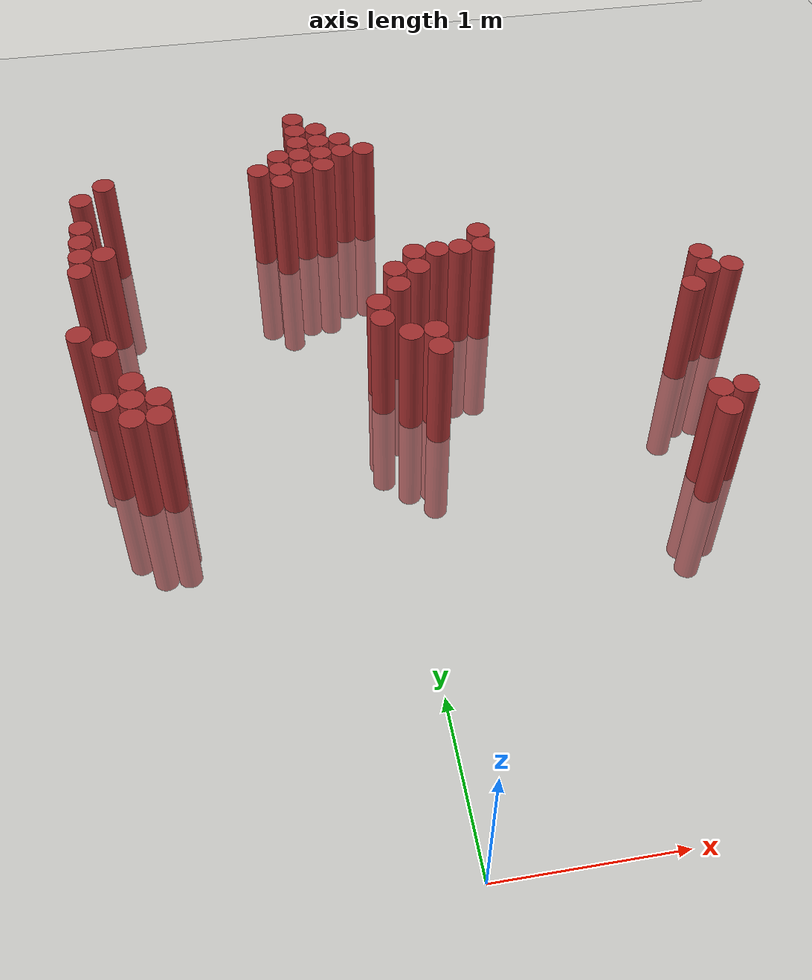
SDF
<sdf version="1.6">
 <world name="default">
  <model name="ground_plane">
   <static>1</static>
   <link name="link">
    <collision name="collision">
     <geometry><plane><normal>0 0 1</normal><size>100 100</size></plane></geometry>
     <surface><friction><ode><mu>100</mu><mu2>50</mu2></ode></friction></surface>
    </collision>
    <visual name="visual">
     <cast_shadows>0</cast_shadows>
     <geometry><plane><normal>0 0 1</normal><size>100 100</size></plane></geometry>
     <material>
      <script><uri>file://media/materials/scripts/gazebo.material</uri><name>Gazebo/Grey</name></script>
     </material>
    </visual>
   </link>
  </model>
  <model name="unit_cylinder_317">
   <static>1</static>
   <pose>-1.775000 3.325000 0.000000 0.000000 0.000000 0.000000</pose>
   <link name="link">
    <inertial>
     <mass>1</mass>
     <inertia><ixx>0.145833</ixx><ixy>0</ixy><ixz>0</ixz><iyy>0.145833</iyy><iyz>0</iyz><izz>0.125</izz></inertia>
    </inertial>
    <collision name="collision">
     <geometry><cylinder><radius>0.075000</radius><length>1.5</length></cylinder></geometry>
    </collision>
    <visual name="visual">
     <geometry><cylinder><radius>0.075000</radius><length>1.5</length></cylinder></geometry>
     <material>
      <ambient>0.648000 0.192000 0.192000 1</ambient>
      <diffuse>0.648000 0.192000 0.192000 1</diffuse>
     </material>
     <material>
      <script><name>Gazebo/Grey</name><uri>file://media/materials/scripts/gazebo.material</uri></script>
     </material>
    </visual>
   </link>
  </model>
  <model name="unit_cylinder_318">
   <static>1</static>
   <pose>-1.775000 3.925000 0.000000 0.000000 0.000000 0.000000</pose>
   <link name="link">
    <inertial>
     <mass>1</mass>
     <inertia><ixx>0.145833</ixx><ixy>0</ixy><ixz>0</ixz><iyy>0.145833</iyy><iyz>0</iyz><izz>0.125</izz></inertia>
    </inertial>
    <collision name="collision">
     <geometry><cylinder><radius>0.075000</radius><length>1.5</length></cylinder></geometry>
    </collision>
    <visual name="visual">
     <geometry><cylinder><radius>0.075000</radius><length>1.5</length></cylinder></geometry>
     <material>
      <ambient>0.648000 0.192000 0.192000 1</ambient>
      <diffuse>0.648000 0.192000 0.192000 1</diffuse>
     </material>
     <material>
      <script><name>Gazebo/Grey</name><uri>file://media/materials/scripts/gazebo.material</uri></script>
     </material>
    </visual>
   </link>
  </model>
  <model name="unit_cylinder_319">
   <static>1</static>
   <pose>-1.775000 4.075000 0.000000 0.000000 0.000000 0.000000</pose>
   <link name="link">
    <inertial>
     <mass>1</mass>
     <inertia><ixx>0.145833</ixx><ixy>0</ixy><ixz>0</ixz><iyy>0.145833</iyy><iyz>0</iyz><izz>0.125</izz></inertia>
    </inertial>
    <collision name="collision">
     <geometry><cylinder><radius>0.075000</radius><length>1.5</length></cylinder></geometry>
    </collision>
    <visual name="visual">
     <geometry><cylinder><radius>0.075000</radius><length>1.5</length></cylinder></geometry>
     <material>
      <ambient>0.648000 0.192000 0.192000 1</ambient>
      <diffuse>0.648000 0.192000 0.192000 1</diffuse>
     </material>
     <material>
      <script><name>Gazebo/Grey</name><uri>file://media/materials/scripts/gazebo.material</uri></script>
     </material>
    </visual>
   </link>
  </model>
  <model name="unit_cylinder_320">
   <static>1</static>
   <pose>-1.775000 4.225000 0.000000 0.000000 0.000000 0.000000</pose>
   <link name="link">
    <inertial>
     <mass>1</mass>
     <inertia><ixx>0.145833</ixx><ixy>0</ixy><ixz>0</ixz><iyy>0.145833</iyy><iyz>0</iyz><izz>0.125</izz></inertia>
    </inertial>
    <collision name="collision">
     <geometry><cylinder><radius>0.075000</radius><length>1.5</length></cylinder></geometry>
    </collision>
    <visual name="visual">
     <geometry><cylinder><radius>0.075000</radius><length>1.5</length></cylinder></geometry>
     <material>
      <ambient>0.648000 0.192000 0.192000 1</ambient>
      <diffuse>0.648000 0.192000 0.192000 1</diffuse>
     </material>
     <material>
      <script><name>Gazebo/Grey</name><uri>file://media/materials/scripts/gazebo.material</uri></script>
     </material>
    </visual>
   </link>
  </model>
  <model name="unit_cylinder_321">
   <static>1</static>
   <pose>-1.775000 4.375000 0.000000 0.000000 0.000000 0.000000</pose>
   <link name="link">
    <inertial>
     <mass>1</mass>
     <inertia><ixx>0.145833</ixx><ixy>0</ixy><ixz>0</ixz><iyy>0.145833</iyy><iyz>0</iyz><izz>0.125</izz></inertia>
    </inertial>
    <collision name="collision">
     <geometry><cylinder><radius>0.075000</radius><length>1.5</length></cylinder></geometry>
    </collision>
    <visual name="visual">
     <geometry><cylinder><radius>0.075000</radius><length>1.5</length></cylinder></geometry>
     <material>
      <ambient>0.648000 0.192000 0.192000 1</ambient>
      <diffuse>0.648000 0.192000 0.192000 1</diffuse>
     </material>
     <material>
      <script><name>Gazebo/Grey</name><uri>file://media/materials/scripts/gazebo.material</uri></script>
     </material>
    </visual>
   </link>
  </model>
  <model name="unit_cylinder_322">
   <static>1</static>
   <pose>-1.775000 4.675000 0.000000 0.000000 0.000000 0.000000</pose>
   <link name="link">
    <inertial>
     <mass>1</mass>
     <inertia><ixx>0.145833</ixx><ixy>0</ixy><ixz>0</ixz><iyy>0.145833</iyy><iyz>0</iyz><izz>0.125</izz></inertia>
    </inertial>
    <collision name="collision">
     <geometry><cylinder><radius>0.075000</radius><length>1.5</length></cylinder></geometry>
    </collision>
    <visual name="visual">
     <geometry><cylinder><radius>0.075000</radius><length>1.5</length></cylinder></geometry>
     <material>
      <ambient>0.648000 0.192000 0.192000 1</ambient>
      <diffuse>0.648000 0.192000 0.192000 1</diffuse>
     </material>
     <material>
      <script><name>Gazebo/Grey</name><uri>file://media/materials/scripts/gazebo.material</uri></script>
     </material>
    </visual>
   </link>
  </model>
  <model name="unit_cylinder_325">
   <static>1</static>
   <pose>-1.625000 2.725000 0.000000 0.000000 0.000000 0.000000</pose>
   <link name="link">
    <inertial>
     <mass>1</mass>
     <inertia><ixx>0.145833</ixx><ixy>0</ixy><ixz>0</ixz><iyy>0.145833</iyy><iyz>0</iyz><izz>0.125</izz></inertia>
    </inertial>
    <collision name="collision">
     <geometry><cylinder><radius>0.075000</radius><length>1.5</length></cylinder></geometry>
    </collision>
    <visual name="visual">
     <geometry><cylinder><radius>0.075000</radius><length>1.5</length></cylinder></geometry>
     <material>
      <ambient>0.648000 0.192000 0.192000 1</ambient>
      <diffuse>0.648000 0.192000 0.192000 1</diffuse>
     </material>
     <material>
      <script><name>Gazebo/Grey</name><uri>file://media/materials/scripts/gazebo.material</uri></script>
     </material>
    </visual>
   </link>
  </model>
  <model name="unit_cylinder_326">
   <static>1</static>
   <pose>-1.625000 3.175000 0.000000 0.000000 0.000000 0.000000</pose>
   <link name="link">
    <inertial>
     <mass>1</mass>
     <inertia><ixx>0.145833</ixx><ixy>0</ixy><ixz>0</ixz><iyy>0.145833</iyy><iyz>0</iyz><izz>0.125</izz></inertia>
    </inertial>
    <collision name="collision">
     <geometry><cylinder><radius>0.075000</radius><length>1.5</length></cylinder></geometry>
    </collision>
    <visual name="visual">
     <geometry><cylinder><radius>0.075000</radius><length>1.5</length></cylinder></geometry>
     <material>
      <ambient>0.648000 0.192000 0.192000 1</ambient>
      <diffuse>0.648000 0.192000 0.192000 1</diffuse>
     </material>
     <material>
      <script><name>Gazebo/Grey</name><uri>file://media/materials/scripts/gazebo.material</uri></script>
     </material>
    </visual>
   </link>
  </model>
  <model name="unit_cylinder_327">
   <static>1</static>
   <pose>-1.625000 4.075000 0.000000 0.000000 0.000000 0.000000</pose>
   <link name="link">
    <inertial>
     <mass>1</mass>
     <inertia><ixx>0.145833</ixx><ixy>0</ixy><ixz>0</ixz><iyy>0.145833</iyy><iyz>0</iyz><izz>0.125</izz></inertia>
    </inertial>
    <collision name="collision">
     <geometry><cylinder><radius>0.075000</radius><length>1.5</length></cylinder></geometry>
    </collision>
    <visual name="visual">
     <geometry><cylinder><radius>0.075000</radius><length>1.5</length></cylinder></geometry>
     <material>
      <ambient>0.648000 0.192000 0.192000 1</ambient>
      <diffuse>0.648000 0.192000 0.192000 1</diffuse>
     </material>
     <material>
      <script><name>Gazebo/Grey</name><uri>file://media/materials/scripts/gazebo.material</uri></script>
     </material>
    </visual>
   </link>
  </model>
  <model name="unit_cylinder_328">
   <static>1</static>
   <pose>-1.625000 4.825000 0.000000 0.000000 0.000000 0.000000</pose>
   <link name="link">
    <inertial>
     <mass>1</mass>
     <inertia><ixx>0.145833</ixx><ixy>0</ixy><ixz>0</ixz><iyy>0.145833</iyy><iyz>0</iyz><izz>0.125</izz></inertia>
    </inertial>
    <collision name="collision">
     <geometry><cylinder><radius>0.075000</radius><length>1.5</length></cylinder></geometry>
    </collision>
    <visual name="visual">
     <geometry><cylinder><radius>0.075000</radius><length>1.5</length></cylinder></geometry>
     <material>
      <ambient>0.648000 0.192000 0.192000 1</ambient>
      <diffuse>0.648000 0.192000 0.192000 1</diffuse>
     </material>
     <material>
      <script><name>Gazebo/Grey</name><uri>file://media/materials/scripts/gazebo.material</uri></script>
     </material>
    </visual>
   </link>
  </model>
  <model name="unit_cylinder_331">
   <static>1</static>
   <pose>-1.475000 2.575000 0.000000 0.000000 0.000000 0.000000</pose>
   <link name="link">
    <inertial>
     <mass>1</mass>
     <inertia><ixx>0.145833</ixx><ixy>0</ixy><ixz>0</ixz><iyy>0.145833</iyy><iyz>0</iyz><izz>0.125</izz></inertia>
    </inertial>
    <collision name="collision">
     <geometry><cylinder><radius>0.075000</radius><length>1.5</length></cylinder></geometry>
    </collision>
    <visual name="visual">
     <geometry><cylinder><radius>0.075000</radius><length>1.5</length></cylinder></geometry>
     <material>
      <ambient>0.648000 0.192000 0.192000 1</ambient>
      <diffuse>0.648000 0.192000 0.192000 1</diffuse>
     </material>
     <material>
      <script><name>Gazebo/Grey</name><uri>file://media/materials/scripts/gazebo.material</uri></script>
     </material>
    </visual>
   </link>
  </model>
  <model name="unit_cylinder_332">
   <static>1</static>
   <pose>-1.475000 2.725000 0.000000 0.000000 0.000000 0.000000</pose>
   <link name="link">
    <inertial>
     <mass>1</mass>
     <inertia><ixx>0.145833</ixx><ixy>0</ixy><ixz>0</ixz><iyy>0.145833</iyy><iyz>0</iyz><izz>0.125</izz></inertia>
    </inertial>
    <collision name="collision">
     <geometry><cylinder><radius>0.075000</radius><length>1.5</length></cylinder></geometry>
    </collision>
    <visual name="visual">
     <geometry><cylinder><radius>0.075000</radius><length>1.5</length></cylinder></geometry>
     <material>
      <ambient>0.648000 0.192000 0.192000 1</ambient>
      <diffuse>0.648000 0.192000 0.192000 1</diffuse>
     </material>
     <material>
      <script><name>Gazebo/Grey</name><uri>file://media/materials/scripts/gazebo.material</uri></script>
     </material>
    </visual>
   </link>
  </model>
  <model name="unit_cylinder_333">
   <static>1</static>
   <pose>-1.475000 2.875000 0.000000 0.000000 0.000000 0.000000</pose>
   <link name="link">
    <inertial>
     <mass>1</mass>
     <inertia><ixx>0.145833</ixx><ixy>0</ixy><ixz>0</ixz><iyy>0.145833</iyy><iyz>0</iyz><izz>0.125</izz></inertia>
    </inertial>
    <collision name="collision">
     <geometry><cylinder><radius>0.075000</radius><length>1.5</length></cylinder></geometry>
    </collision>
    <visual name="visual">
     <geometry><cylinder><radius>0.075000</radius><length>1.5</length></cylinder></geometry>
     <material>
      <ambient>0.648000 0.192000 0.192000 1</ambient>
      <diffuse>0.648000 0.192000 0.192000 1</diffuse>
     </material>
     <material>
      <script><name>Gazebo/Grey</name><uri>file://media/materials/scripts/gazebo.material</uri></script>
     </material>
    </visual>
   </link>
  </model>
  <model name="unit_cylinder_334">
   <static>1</static>
   <pose>-1.325000 2.575000 0.000000 0.000000 0.000000 0.000000</pose>
   <link name="link">
    <inertial>
     <mass>1</mass>
     <inertia><ixx>0.145833</ixx><ixy>0</ixy><ixz>0</ixz><iyy>0.145833</iyy><iyz>0</iyz><izz>0.125</izz></inertia>
    </inertial>
    <collision name="collision">
     <geometry><cylinder><radius>0.075000</radius><length>1.5</length></cylinder></geometry>
    </collision>
    <visual name="visual">
     <geometry><cylinder><radius>0.075000</radius><length>1.5</length></cylinder></geometry>
     <material>
      <ambient>0.648000 0.192000 0.192000 1</ambient>
      <diffuse>0.648000 0.192000 0.192000 1</diffuse>
     </material>
     <material>
      <script><name>Gazebo/Grey</name><uri>file://media/materials/scripts/gazebo.material</uri></script>
     </material>
    </visual>
   </link>
  </model>
  <model name="unit_cylinder_335">
   <static>1</static>
   <pose>-1.325000 2.725000 0.000000 0.000000 0.000000 0.000000</pose>
   <link name="link">
    <inertial>
     <mass>1</mass>
     <inertia><ixx>0.145833</ixx><ixy>0</ixy><ixz>0</ixz><iyy>0.145833</iyy><iyz>0</iyz><izz>0.125</izz></inertia>
    </inertial>
    <collision name="collision">
     <geometry><cylinder><radius>0.075000</radius><length>1.5</length></cylinder></geometry>
    </collision>
    <visual name="visual">
     <geometry><cylinder><radius>0.075000</radius><length>1.5</length></cylinder></geometry>
     <material>
      <ambient>0.648000 0.192000 0.192000 1</ambient>
      <diffuse>0.648000 0.192000 0.192000 1</diffuse>
     </material>
     <material>
      <script><name>Gazebo/Grey</name><uri>file://media/materials/scripts/gazebo.material</uri></script>
     </material>
    </visual>
   </link>
  </model>
  <model name="unit_cylinder_347">
   <static>1</static>
   <pose>-0.575000 4.825000 0.000000 0.000000 0.000000 0.000000</pose>
   <link name="link">
    <inertial>
     <mass>1</mass>
     <inertia><ixx>0.145833</ixx><ixy>0</ixy><ixz>0</ixz><iyy>0.145833</iyy><iyz>0</iyz><izz>0.125</izz></inertia>
    </inertial>
    <collision name="collision">
     <geometry><cylinder><radius>0.075000</radius><length>1.5</length></cylinder></geometry>
    </collision>
    <visual name="visual">
     <geometry><cylinder><radius>0.075000</radius><length>1.5</length></cylinder></geometry>
     <material>
      <ambient>0.648000 0.192000 0.192000 1</ambient>
      <diffuse>0.648000 0.192000 0.192000 1</diffuse>
     </material>
     <material>
      <script><name>Gazebo/Grey</name><uri>file://media/materials/scripts/gazebo.material</uri></script>
     </material>
    </visual>
   </link>
  </model>
  <model name="unit_cylinder_348">
   <static>1</static>
   <pose>-0.425000 4.675000 0.000000 0.000000 0.000000 0.000000</pose>
   <link name="link">
    <inertial>
     <mass>1</mass>
     <inertia><ixx>0.145833</ixx><ixy>0</ixy><ixz>0</ixz><iyy>0.145833</iyy><iyz>0</iyz><izz>0.125</izz></inertia>
    </inertial>
    <collision name="collision">
     <geometry><cylinder><radius>0.075000</radius><length>1.5</length></cylinder></geometry>
    </collision>
    <visual name="visual">
     <geometry><cylinder><radius>0.075000</radius><length>1.5</length></cylinder></geometry>
     <material>
      <ambient>0.648000 0.192000 0.192000 1</ambient>
      <diffuse>0.648000 0.192000 0.192000 1</diffuse>
     </material>
     <material>
      <script><name>Gazebo/Grey</name><uri>file://media/materials/scripts/gazebo.material</uri></script>
     </material>
    </visual>
   </link>
  </model>
  <model name="unit_cylinder_349">
   <static>1</static>
   <pose>-0.425000 4.825000 0.000000 0.000000 0.000000 0.000000</pose>
   <link name="link">
    <inertial>
     <mass>1</mass>
     <inertia><ixx>0.145833</ixx><ixy>0</ixy><ixz>0</ixz><iyy>0.145833</iyy><iyz>0</iyz><izz>0.125</izz></inertia>
    </inertial>
    <collision name="collision">
     <geometry><cylinder><radius>0.075000</radius><length>1.5</length></cylinder></geometry>
    </collision>
    <visual name="visual">
     <geometry><cylinder><radius>0.075000</radius><length>1.5</length></cylinder></geometry>
     <material>
      <ambient>0.648000 0.192000 0.192000 1</ambient>
      <diffuse>0.648000 0.192000 0.192000 1</diffuse>
     </material>
     <material>
      <script><name>Gazebo/Grey</name><uri>file://media/materials/scripts/gazebo.material</uri></script>
     </material>
    </visual>
   </link>
  </model>
  <model name="unit_cylinder_350">
   <static>1</static>
   <pose>-0.425000 4.975000 0.000000 0.000000 0.000000 0.000000</pose>
   <link name="link">
    <inertial>
     <mass>1</mass>
     <inertia><ixx>0.145833</ixx><ixy>0</ixy><ixz>0</ixz><iyy>0.145833</iyy><iyz>0</iyz><izz>0.125</izz></inertia>
    </inertial>
    <collision name="collision">
     <geometry><cylinder><radius>0.075000</radius><length>1.5</length></cylinder></geometry>
    </collision>
    <visual name="visual">
     <geometry><cylinder><radius>0.075000</radius><length>1.5</length></cylinder></geometry>
     <material>
      <ambient>0.648000 0.192000 0.192000 1</ambient>
      <diffuse>0.648000 0.192000 0.192000 1</diffuse>
     </material>
     <material>
      <script><name>Gazebo/Grey</name><uri>file://media/materials/scripts/gazebo.material</uri></script>
     </material>
    </visual>
   </link>
  </model>
  <model name="unit_cylinder_351">
   <static>1</static>
   <pose>-0.275000 4.825000 0.000000 0.000000 0.000000 0.000000</pose>
   <link name="link">
    <inertial>
     <mass>1</mass>
     <inertia><ixx>0.145833</ixx><ixy>0</ixy><ixz>0</ixz><iyy>0.145833</iyy><iyz>0</iyz><izz>0.125</izz></inertia>
    </inertial>
    <collision name="collision">
     <geometry><cylinder><radius>0.075000</radius><length>1.5</length></cylinder></geometry>
    </collision>
    <visual name="visual">
     <geometry><cylinder><radius>0.075000</radius><length>1.5</length></cylinder></geometry>
     <material>
      <ambient>0.648000 0.192000 0.192000 1</ambient>
      <diffuse>0.648000 0.192000 0.192000 1</diffuse>
     </material>
     <material>
      <script><name>Gazebo/Grey</name><uri>file://media/materials/scripts/gazebo.material</uri></script>
     </material>
    </visual>
   </link>
  </model>
  <model name="unit_cylinder_352">
   <static>1</static>
   <pose>-0.275000 4.975000 0.000000 0.000000 0.000000 0.000000</pose>
   <link name="link">
    <inertial>
     <mass>1</mass>
     <inertia><ixx>0.145833</ixx><ixy>0</ixy><ixz>0</ixz><iyy>0.145833</iyy><iyz>0</iyz><izz>0.125</izz></inertia>
    </inertial>
    <collision name="collision">
     <geometry><cylinder><radius>0.075000</radius><length>1.5</length></cylinder></geometry>
    </collision>
    <visual name="visual">
     <geometry><cylinder><radius>0.075000</radius><length>1.5</length></cylinder></geometry>
     <material>
      <ambient>0.648000 0.192000 0.192000 1</ambient>
      <diffuse>0.648000 0.192000 0.192000 1</diffuse>
     </material>
     <material>
      <script><name>Gazebo/Grey</name><uri>file://media/materials/scripts/gazebo.material</uri></script>
     </material>
    </visual>
   </link>
  </model>
  <model name="unit_cylinder_353">
   <static>1</static>
   <pose>-0.275000 5.125000 0.000000 0.000000 0.000000 0.000000</pose>
   <link name="link">
    <inertial>
     <mass>1</mass>
     <inertia><ixx>0.145833</ixx><ixy>0</ixy><ixz>0</ixz><iyy>0.145833</iyy><iyz>0</iyz><izz>0.125</izz></inertia>
    </inertial>
    <collision name="collision">
     <geometry><cylinder><radius>0.075000</radius><length>1.5</length></cylinder></geometry>
    </collision>
    <visual name="visual">
     <geometry><cylinder><radius>0.075000</radius><length>1.5</length></cylinder></geometry>
     <material>
      <ambient>0.648000 0.192000 0.192000 1</ambient>
      <diffuse>0.648000 0.192000 0.192000 1</diffuse>
     </material>
     <material>
      <script><name>Gazebo/Grey</name><uri>file://media/materials/scripts/gazebo.material</uri></script>
     </material>
    </visual>
   </link>
  </model>
  <model name="unit_cylinder_354">
   <static>1</static>
   <pose>-0.275000 5.275000 0.000000 0.000000 0.000000 0.000000</pose>
   <link name="link">
    <inertial>
     <mass>1</mass>
     <inertia><ixx>0.145833</ixx><ixy>0</ixy><ixz>0</ixz><iyy>0.145833</iyy><iyz>0</iyz><izz>0.125</izz></inertia>
    </inertial>
    <collision name="collision">
     <geometry><cylinder><radius>0.075000</radius><length>1.5</length></cylinder></geometry>
    </collision>
    <visual name="visual">
     <geometry><cylinder><radius>0.075000</radius><length>1.5</length></cylinder></geometry>
     <material>
      <ambient>0.648000 0.192000 0.192000 1</ambient>
      <diffuse>0.648000 0.192000 0.192000 1</diffuse>
     </material>
     <material>
      <script><name>Gazebo/Grey</name><uri>file://media/materials/scripts/gazebo.material</uri></script>
     </material>
    </visual>
   </link>
  </model>
  <model name="unit_cylinder_355">
   <static>1</static>
   <pose>-0.275000 5.425000 0.000000 0.000000 0.000000 0.000000</pose>
   <link name="link">
    <inertial>
     <mass>1</mass>
     <inertia><ixx>0.145833</ixx><ixy>0</ixy><ixz>0</ixz><iyy>0.145833</iyy><iyz>0</iyz><izz>0.125</izz></inertia>
    </inertial>
    <collision name="collision">
     <geometry><cylinder><radius>0.075000</radius><length>1.5</length></cylinder></geometry>
    </collision>
    <visual name="visual">
     <geometry><cylinder><radius>0.075000</radius><length>1.5</length></cylinder></geometry>
     <material>
      <ambient>0.648000 0.192000 0.192000 1</ambient>
      <diffuse>0.648000 0.192000 0.192000 1</diffuse>
     </material>
     <material>
      <script><name>Gazebo/Grey</name><uri>file://media/materials/scripts/gazebo.material</uri></script>
     </material>
    </visual>
   </link>
  </model>
  <model name="unit_cylinder_357">
   <static>1</static>
   <pose>-0.125000 4.825000 0.000000 0.000000 0.000000 0.000000</pose>
   <link name="link">
    <inertial>
     <mass>1</mass>
     <inertia><ixx>0.145833</ixx><ixy>0</ixy><ixz>0</ixz><iyy>0.145833</iyy><iyz>0</iyz><izz>0.125</izz></inertia>
    </inertial>
    <collision name="collision">
     <geometry><cylinder><radius>0.075000</radius><length>1.5</length></cylinder></geometry>
    </collision>
    <visual name="visual">
     <geometry><cylinder><radius>0.075000</radius><length>1.5</length></cylinder></geometry>
     <material>
      <ambient>0.648000 0.192000 0.192000 1</ambient>
      <diffuse>0.648000 0.192000 0.192000 1</diffuse>
     </material>
     <material>
      <script><name>Gazebo/Grey</name><uri>file://media/materials/scripts/gazebo.material</uri></script>
     </material>
    </visual>
   </link>
  </model>
  <model name="unit_cylinder_358">
   <static>1</static>
   <pose>-0.125000 4.975000 0.000000 0.000000 0.000000 0.000000</pose>
   <link name="link">
    <inertial>
     <mass>1</mass>
     <inertia><ixx>0.145833</ixx><ixy>0</ixy><ixz>0</ixz><iyy>0.145833</iyy><iyz>0</iyz><izz>0.125</izz></inertia>
    </inertial>
    <collision name="collision">
     <geometry><cylinder><radius>0.075000</radius><length>1.5</length></cylinder></geometry>
    </collision>
    <visual name="visual">
     <geometry><cylinder><radius>0.075000</radius><length>1.5</length></cylinder></geometry>
     <material>
      <ambient>0.648000 0.192000 0.192000 1</ambient>
      <diffuse>0.648000 0.192000 0.192000 1</diffuse>
     </material>
     <material>
      <script><name>Gazebo/Grey</name><uri>file://media/materials/scripts/gazebo.material</uri></script>
     </material>
    </visual>
   </link>
  </model>
  <model name="unit_cylinder_359">
   <static>1</static>
   <pose>-0.125000 5.125000 0.000000 0.000000 0.000000 0.000000</pose>
   <link name="link">
    <inertial>
     <mass>1</mass>
     <inertia><ixx>0.145833</ixx><ixy>0</ixy><ixz>0</ixz><iyy>0.145833</iyy><iyz>0</iyz><izz>0.125</izz></inertia>
    </inertial>
    <collision name="collision">
     <geometry><cylinder><radius>0.075000</radius><length>1.5</length></cylinder></geometry>
    </collision>
    <visual name="visual">
     <geometry><cylinder><radius>0.075000</radius><length>1.5</length></cylinder></geometry>
     <material>
      <ambient>0.648000 0.192000 0.192000 1</ambient>
      <diffuse>0.648000 0.192000 0.192000 1</diffuse>
     </material>
     <material>
      <script><name>Gazebo/Grey</name><uri>file://media/materials/scripts/gazebo.material</uri></script>
     </material>
    </visual>
   </link>
  </model>
  <model name="unit_cylinder_360">
   <static>1</static>
   <pose>-0.125000 5.275000 0.000000 0.000000 0.000000 0.000000</pose>
   <link name="link">
    <inertial>
     <mass>1</mass>
     <inertia><ixx>0.145833</ixx><ixy>0</ixy><ixz>0</ixz><iyy>0.145833</iyy><iyz>0</iyz><izz>0.125</izz></inertia>
    </inertial>
    <collision name="collision">
     <geometry><cylinder><radius>0.075000</radius><length>1.5</length></cylinder></geometry>
    </collision>
    <visual name="visual">
     <geometry><cylinder><radius>0.075000</radius><length>1.5</length></cylinder></geometry>
     <material>
      <ambient>0.648000 0.192000 0.192000 1</ambient>
      <diffuse>0.648000 0.192000 0.192000 1</diffuse>
     </material>
     <material>
      <script><name>Gazebo/Grey</name><uri>file://media/materials/scripts/gazebo.material</uri></script>
     </material>
    </visual>
   </link>
  </model>
  <model name="unit_cylinder_363">
   <static>1</static>
   <pose>0.025000 3.175000 0.000000 0.000000 0.000000 0.000000</pose>
   <link name="link">
    <inertial>
     <mass>1</mass>
     <inertia><ixx>0.145833</ixx><ixy>0</ixy><ixz>0</ixz><iyy>0.145833</iyy><iyz>0</iyz><izz>0.125</izz></inertia>
    </inertial>
    <collision name="collision">
     <geometry><cylinder><radius>0.075000</radius><length>1.5</length></cylinder></geometry>
    </collision>
    <visual name="visual">
     <geometry><cylinder><radius>0.075000</radius><length>1.5</length></cylinder></geometry>
     <material>
      <ambient>0.648000 0.192000 0.192000 1</ambient>
      <diffuse>0.648000 0.192000 0.192000 1</diffuse>
     </material>
     <material>
      <script><name>Gazebo/Grey</name><uri>file://media/materials/scripts/gazebo.material</uri></script>
     </material>
    </visual>
   </link>
  </model>
  <model name="unit_cylinder_364">
   <static>1</static>
   <pose>0.025000 3.325000 0.000000 0.000000 0.000000 0.000000</pose>
   <link name="link">
    <inertial>
     <mass>1</mass>
     <inertia><ixx>0.145833</ixx><ixy>0</ixy><ixz>0</ixz><iyy>0.145833</iyy><iyz>0</iyz><izz>0.125</izz></inertia>
    </inertial>
    <collision name="collision">
     <geometry><cylinder><radius>0.075000</radius><length>1.5</length></cylinder></geometry>
    </collision>
    <visual name="visual">
     <geometry><cylinder><radius>0.075000</radius><length>1.5</length></cylinder></geometry>
     <material>
      <ambient>0.648000 0.192000 0.192000 1</ambient>
      <diffuse>0.648000 0.192000 0.192000 1</diffuse>
     </material>
     <material>
      <script><name>Gazebo/Grey</name><uri>file://media/materials/scripts/gazebo.material</uri></script>
     </material>
    </visual>
   </link>
  </model>
  <model name="unit_cylinder_365">
   <static>1</static>
   <pose>0.025000 4.975000 0.000000 0.000000 0.000000 0.000000</pose>
   <link name="link">
    <inertial>
     <mass>1</mass>
     <inertia><ixx>0.145833</ixx><ixy>0</ixy><ixz>0</ixz><iyy>0.145833</iyy><iyz>0</iyz><izz>0.125</izz></inertia>
    </inertial>
    <collision name="collision">
     <geometry><cylinder><radius>0.075000</radius><length>1.5</length></cylinder></geometry>
    </collision>
    <visual name="visual">
     <geometry><cylinder><radius>0.075000</radius><length>1.5</length></cylinder></geometry>
     <material>
      <ambient>0.648000 0.192000 0.192000 1</ambient>
      <diffuse>0.648000 0.192000 0.192000 1</diffuse>
     </material>
     <material>
      <script><name>Gazebo/Grey</name><uri>file://media/materials/scripts/gazebo.material</uri></script>
     </material>
    </visual>
   </link>
  </model>
  <model name="unit_cylinder_366">
   <static>1</static>
   <pose>0.025000 5.125000 0.000000 0.000000 0.000000 0.000000</pose>
   <link name="link">
    <inertial>
     <mass>1</mass>
     <inertia><ixx>0.145833</ixx><ixy>0</ixy><ixz>0</ixz><iyy>0.145833</iyy><iyz>0</iyz><izz>0.125</izz></inertia>
    </inertial>
    <collision name="collision">
     <geometry><cylinder><radius>0.075000</radius><length>1.5</length></cylinder></geometry>
    </collision>
    <visual name="visual">
     <geometry><cylinder><radius>0.075000</radius><length>1.5</length></cylinder></geometry>
     <material>
      <ambient>0.648000 0.192000 0.192000 1</ambient>
      <diffuse>0.648000 0.192000 0.192000 1</diffuse>
     </material>
     <material>
      <script><name>Gazebo/Grey</name><uri>file://media/materials/scripts/gazebo.material</uri></script>
     </material>
    </visual>
   </link>
  </model>
  <model name="unit_cylinder_369">
   <static>1</static>
   <pose>0.175000 3.025000 0.000000 0.000000 0.000000 0.000000</pose>
   <link name="link">
    <inertial>
     <mass>1</mass>
     <inertia><ixx>0.145833</ixx><ixy>0</ixy><ixz>0</ixz><iyy>0.145833</iyy><iyz>0</iyz><izz>0.125</izz></inertia>
    </inertial>
    <collision name="collision">
     <geometry><cylinder><radius>0.075000</radius><length>1.5</length></cylinder></geometry>
    </collision>
    <visual name="visual">
     <geometry><cylinder><radius>0.075000</radius><length>1.5</length></cylinder></geometry>
     <material>
      <ambient>0.648000 0.192000 0.192000 1</ambient>
      <diffuse>0.648000 0.192000 0.192000 1</diffuse>
     </material>
     <material>
      <script><name>Gazebo/Grey</name><uri>file://media/materials/scripts/gazebo.material</uri></script>
     </material>
    </visual>
   </link>
  </model>
  <model name="unit_cylinder_370">
   <static>1</static>
   <pose>0.175000 3.475000 0.000000 0.000000 0.000000 0.000000</pose>
   <link name="link">
    <inertial>
     <mass>1</mass>
     <inertia><ixx>0.145833</ixx><ixy>0</ixy><ixz>0</ixz><iyy>0.145833</iyy><iyz>0</iyz><izz>0.125</izz></inertia>
    </inertial>
    <collision name="collision">
     <geometry><cylinder><radius>0.075000</radius><length>1.5</length></cylinder></geometry>
    </collision>
    <visual name="visual">
     <geometry><cylinder><radius>0.075000</radius><length>1.5</length></cylinder></geometry>
     <material>
      <ambient>0.648000 0.192000 0.192000 1</ambient>
      <diffuse>0.648000 0.192000 0.192000 1</diffuse>
     </material>
     <material>
      <script><name>Gazebo/Grey</name><uri>file://media/materials/scripts/gazebo.material</uri></script>
     </material>
    </visual>
   </link>
  </model>
  <model name="unit_cylinder_371">
   <static>1</static>
   <pose>0.175000 3.625000 0.000000 0.000000 0.000000 0.000000</pose>
   <link name="link">
    <inertial>
     <mass>1</mass>
     <inertia><ixx>0.145833</ixx><ixy>0</ixy><ixz>0</ixz><iyy>0.145833</iyy><iyz>0</iyz><izz>0.125</izz></inertia>
    </inertial>
    <collision name="collision">
     <geometry><cylinder><radius>0.075000</radius><length>1.5</length></cylinder></geometry>
    </collision>
    <visual name="visual">
     <geometry><cylinder><radius>0.075000</radius><length>1.5</length></cylinder></geometry>
     <material>
      <ambient>0.648000 0.192000 0.192000 1</ambient>
      <diffuse>0.648000 0.192000 0.192000 1</diffuse>
     </material>
     <material>
      <script><name>Gazebo/Grey</name><uri>file://media/materials/scripts/gazebo.material</uri></script>
     </material>
    </visual>
   </link>
  </model>
  <model name="unit_cylinder_372">
   <static>1</static>
   <pose>0.175000 4.975000 0.000000 0.000000 0.000000 0.000000</pose>
   <link name="link">
    <inertial>
     <mass>1</mass>
     <inertia><ixx>0.145833</ixx><ixy>0</ixy><ixz>0</ixz><iyy>0.145833</iyy><iyz>0</iyz><izz>0.125</izz></inertia>
    </inertial>
    <collision name="collision">
     <geometry><cylinder><radius>0.075000</radius><length>1.5</length></cylinder></geometry>
    </collision>
    <visual name="visual">
     <geometry><cylinder><radius>0.075000</radius><length>1.5</length></cylinder></geometry>
     <material>
      <ambient>0.648000 0.192000 0.192000 1</ambient>
      <diffuse>0.648000 0.192000 0.192000 1</diffuse>
     </material>
     <material>
      <script><name>Gazebo/Grey</name><uri>file://media/materials/scripts/gazebo.material</uri></script>
     </material>
    </visual>
   </link>
  </model>
  <model name="unit_cylinder_374">
   <static>1</static>
   <pose>0.325000 2.875000 0.000000 0.000000 0.000000 0.000000</pose>
   <link name="link">
    <inertial>
     <mass>1</mass>
     <inertia><ixx>0.145833</ixx><ixy>0</ixy><ixz>0</ixz><iyy>0.145833</iyy><iyz>0</iyz><izz>0.125</izz></inertia>
    </inertial>
    <collision name="collision">
     <geometry><cylinder><radius>0.075000</radius><length>1.5</length></cylinder></geometry>
    </collision>
    <visual name="visual">
     <geometry><cylinder><radius>0.075000</radius><length>1.5</length></cylinder></geometry>
     <material>
      <ambient>0.648000 0.192000 0.192000 1</ambient>
      <diffuse>0.648000 0.192000 0.192000 1</diffuse>
     </material>
     <material>
      <script><name>Gazebo/Grey</name><uri>file://media/materials/scripts/gazebo.material</uri></script>
     </material>
    </visual>
   </link>
  </model>
  <model name="unit_cylinder_375">
   <static>1</static>
   <pose>0.325000 3.025000 0.000000 0.000000 0.000000 0.000000</pose>
   <link name="link">
    <inertial>
     <mass>1</mass>
     <inertia><ixx>0.145833</ixx><ixy>0</ixy><ixz>0</ixz><iyy>0.145833</iyy><iyz>0</iyz><izz>0.125</izz></inertia>
    </inertial>
    <collision name="collision">
     <geometry><cylinder><radius>0.075000</radius><length>1.5</length></cylinder></geometry>
    </collision>
    <visual name="visual">
     <geometry><cylinder><radius>0.075000</radius><length>1.5</length></cylinder></geometry>
     <material>
      <ambient>0.648000 0.192000 0.192000 1</ambient>
      <diffuse>0.648000 0.192000 0.192000 1</diffuse>
     </material>
     <material>
      <script><name>Gazebo/Grey</name><uri>file://media/materials/scripts/gazebo.material</uri></script>
     </material>
    </visual>
   </link>
  </model>
  <model name="unit_cylinder_376">
   <static>1</static>
   <pose>0.325000 3.625000 0.000000 0.000000 0.000000 0.000000</pose>
   <link name="link">
    <inertial>
     <mass>1</mass>
     <inertia><ixx>0.145833</ixx><ixy>0</ixy><ixz>0</ixz><iyy>0.145833</iyy><iyz>0</iyz><izz>0.125</izz></inertia>
    </inertial>
    <collision name="collision">
     <geometry><cylinder><radius>0.075000</radius><length>1.5</length></cylinder></geometry>
    </collision>
    <visual name="visual">
     <geometry><cylinder><radius>0.075000</radius><length>1.5</length></cylinder></geometry>
     <material>
      <ambient>0.648000 0.192000 0.192000 1</ambient>
      <diffuse>0.648000 0.192000 0.192000 1</diffuse>
     </material>
     <material>
      <script><name>Gazebo/Grey</name><uri>file://media/materials/scripts/gazebo.material</uri></script>
     </material>
    </visual>
   </link>
  </model>
  <model name="unit_cylinder_377">
   <static>1</static>
   <pose>0.325000 3.775000 0.000000 0.000000 0.000000 0.000000</pose>
   <link name="link">
    <inertial>
     <mass>1</mass>
     <inertia><ixx>0.145833</ixx><ixy>0</ixy><ixz>0</ixz><iyy>0.145833</iyy><iyz>0</iyz><izz>0.125</izz></inertia>
    </inertial>
    <collision name="collision">
     <geometry><cylinder><radius>0.075000</radius><length>1.5</length></cylinder></geometry>
    </collision>
    <visual name="visual">
     <geometry><cylinder><radius>0.075000</radius><length>1.5</length></cylinder></geometry>
     <material>
      <ambient>0.648000 0.192000 0.192000 1</ambient>
      <diffuse>0.648000 0.192000 0.192000 1</diffuse>
     </material>
     <material>
      <script><name>Gazebo/Grey</name><uri>file://media/materials/scripts/gazebo.material</uri></script>
     </material>
    </visual>
   </link>
  </model>
  <model name="unit_cylinder_378">
   <static>1</static>
   <pose>0.475000 3.775000 0.000000 0.000000 0.000000 0.000000</pose>
   <link name="link">
    <inertial>
     <mass>1</mass>
     <inertia><ixx>0.145833</ixx><ixy>0</ixy><ixz>0</ixz><iyy>0.145833</iyy><iyz>0</iyz><izz>0.125</izz></inertia>
    </inertial>
    <collision name="collision">
     <geometry><cylinder><radius>0.075000</radius><length>1.5</length></cylinder></geometry>
    </collision>
    <visual name="visual">
     <geometry><cylinder><radius>0.075000</radius><length>1.5</length></cylinder></geometry>
     <material>
      <ambient>0.648000 0.192000 0.192000 1</ambient>
      <diffuse>0.648000 0.192000 0.192000 1</diffuse>
     </material>
     <material>
      <script><name>Gazebo/Grey</name><uri>file://media/materials/scripts/gazebo.material</uri></script>
     </material>
    </visual>
   </link>
  </model>
  <model name="unit_cylinder_383">
   <static>1</static>
   <pose>0.625000 3.775000 0.000000 0.000000 0.000000 0.000000</pose>
   <link name="link">
    <inertial>
     <mass>1</mass>
     <inertia><ixx>0.145833</ixx><ixy>0</ixy><ixz>0</ixz><iyy>0.145833</iyy><iyz>0</iyz><izz>0.125</izz></inertia>
    </inertial>
    <collision name="collision">
     <geometry><cylinder><radius>0.075000</radius><length>1.5</length></cylinder></geometry>
    </collision>
    <visual name="visual">
     <geometry><cylinder><radius>0.075000</radius><length>1.5</length></cylinder></geometry>
     <material>
      <ambient>0.648000 0.192000 0.192000 1</ambient>
      <diffuse>0.648000 0.192000 0.192000 1</diffuse>
     </material>
     <material>
      <script><name>Gazebo/Grey</name><uri>file://media/materials/scripts/gazebo.material</uri></script>
     </material>
    </visual>
   </link>
  </model>
  <model name="unit_cylinder_387">
   <static>1</static>
   <pose>0.775000 3.775000 0.000000 0.000000 0.000000 0.000000</pose>
   <link name="link">
    <inertial>
     <mass>1</mass>
     <inertia><ixx>0.145833</ixx><ixy>0</ixy><ixz>0</ixz><iyy>0.145833</iyy><iyz>0</iyz><izz>0.125</izz></inertia>
    </inertial>
    <collision name="collision">
     <geometry><cylinder><radius>0.075000</radius><length>1.5</length></cylinder></geometry>
    </collision>
    <visual name="visual">
     <geometry><cylinder><radius>0.075000</radius><length>1.5</length></cylinder></geometry>
     <material>
      <ambient>0.648000 0.192000 0.192000 1</ambient>
      <diffuse>0.648000 0.192000 0.192000 1</diffuse>
     </material>
     <material>
      <script><name>Gazebo/Grey</name><uri>file://media/materials/scripts/gazebo.material</uri></script>
     </material>
    </visual>
   </link>
  </model>
  <model name="unit_cylinder_388">
   <static>1</static>
   <pose>0.775000 3.925000 0.000000 0.000000 0.000000 0.000000</pose>
   <link name="link">
    <inertial>
     <mass>1</mass>
     <inertia><ixx>0.145833</ixx><ixy>0</ixy><ixz>0</ixz><iyy>0.145833</iyy><iyz>0</iyz><izz>0.125</izz></inertia>
    </inertial>
    <collision name="collision">
     <geometry><cylinder><radius>0.075000</radius><length>1.5</length></cylinder></geometry>
    </collision>
    <visual name="visual">
     <geometry><cylinder><radius>0.075000</radius><length>1.5</length></cylinder></geometry>
     <material>
      <ambient>0.648000 0.192000 0.192000 1</ambient>
      <diffuse>0.648000 0.192000 0.192000 1</diffuse>
     </material>
     <material>
      <script><name>Gazebo/Grey</name><uri>file://media/materials/scripts/gazebo.material</uri></script>
     </material>
    </visual>
   </link>
  </model>
  <model name="unit_cylinder_399">
   <static>1</static>
   <pose>1.825000 2.125000 0.000000 0.000000 0.000000 0.000000</pose>
   <link name="link">
    <inertial>
     <mass>1</mass>
     <inertia><ixx>0.145833</ixx><ixy>0</ixy><ixz>0</ixz><iyy>0.145833</iyy><iyz>0</iyz><izz>0.125</izz></inertia>
    </inertial>
    <collision name="collision">
     <geometry><cylinder><radius>0.075000</radius><length>1.5</length></cylinder></geometry>
    </collision>
    <visual name="visual">
     <geometry><cylinder><radius>0.075000</radius><length>1.5</length></cylinder></geometry>
     <material>
      <ambient>0.648000 0.192000 0.192000 1</ambient>
      <diffuse>0.648000 0.192000 0.192000 1</diffuse>
     </material>
     <material>
      <script><name>Gazebo/Grey</name><uri>file://media/materials/scripts/gazebo.material</uri></script>
     </material>
    </visual>
   </link>
  </model>
  <model name="unit_cylinder_400">
   <static>1</static>
   <pose>1.825000 2.275000 0.000000 0.000000 0.000000 0.000000</pose>
   <link name="link">
    <inertial>
     <mass>1</mass>
     <inertia><ixx>0.145833</ixx><ixy>0</ixy><ixz>0</ixz><iyy>0.145833</iyy><iyz>0</iyz><izz>0.125</izz></inertia>
    </inertial>
    <collision name="collision">
     <geometry><cylinder><radius>0.075000</radius><length>1.5</length></cylinder></geometry>
    </collision>
    <visual name="visual">
     <geometry><cylinder><radius>0.075000</radius><length>1.5</length></cylinder></geometry>
     <material>
      <ambient>0.648000 0.192000 0.192000 1</ambient>
      <diffuse>0.648000 0.192000 0.192000 1</diffuse>
     </material>
     <material>
      <script><name>Gazebo/Grey</name><uri>file://media/materials/scripts/gazebo.material</uri></script>
     </material>
    </visual>
   </link>
  </model>
  <model name="unit_cylinder_402">
   <static>1</static>
   <pose>1.975000 2.275000 0.000000 0.000000 0.000000 0.000000</pose>
   <link name="link">
    <inertial>
     <mass>1</mass>
     <inertia><ixx>0.145833</ixx><ixy>0</ixy><ixz>0</ixz><iyy>0.145833</iyy><iyz>0</iyz><izz>0.125</izz></inertia>
    </inertial>
    <collision name="collision">
     <geometry><cylinder><radius>0.075000</radius><length>1.5</length></cylinder></geometry>
    </collision>
    <visual name="visual">
     <geometry><cylinder><radius>0.075000</radius><length>1.5</length></cylinder></geometry>
     <material>
      <ambient>0.648000 0.192000 0.192000 1</ambient>
      <diffuse>0.648000 0.192000 0.192000 1</diffuse>
     </material>
     <material>
      <script><name>Gazebo/Grey</name><uri>file://media/materials/scripts/gazebo.material</uri></script>
     </material>
    </visual>
   </link>
  </model>
  <model name="unit_cylinder_403">
   <static>1</static>
   <pose>1.975000 3.175000 0.000000 0.000000 0.000000 0.000000</pose>
   <link name="link">
    <inertial>
     <mass>1</mass>
     <inertia><ixx>0.145833</ixx><ixy>0</ixy><ixz>0</ixz><iyy>0.145833</iyy><iyz>0</iyz><izz>0.125</izz></inertia>
    </inertial>
    <collision name="collision">
     <geometry><cylinder><radius>0.075000</radius><length>1.5</length></cylinder></geometry>
    </collision>
    <visual name="visual">
     <geometry><cylinder><radius>0.075000</radius><length>1.5</length></cylinder></geometry>
     <material>
      <ambient>0.648000 0.192000 0.192000 1</ambient>
      <diffuse>0.648000 0.192000 0.192000 1</diffuse>
     </material>
     <material>
      <script><name>Gazebo/Grey</name><uri>file://media/materials/scripts/gazebo.material</uri></script>
     </material>
    </visual>
   </link>
  </model>
  <model name="unit_cylinder_405">
   <static>1</static>
   <pose>2.125000 3.325000 0.000000 0.000000 0.000000 0.000000</pose>
   <link name="link">
    <inertial>
     <mass>1</mass>
     <inertia><ixx>0.145833</ixx><ixy>0</ixy><ixz>0</ixz><iyy>0.145833</iyy><iyz>0</iyz><izz>0.125</izz></inertia>
    </inertial>
    <collision name="collision">
     <geometry><cylinder><radius>0.075000</radius><length>1.5</length></cylinder></geometry>
    </collision>
    <visual name="visual">
     <geometry><cylinder><radius>0.075000</radius><length>1.5</length></cylinder></geometry>
     <material>
      <ambient>0.648000 0.192000 0.192000 1</ambient>
      <diffuse>0.648000 0.192000 0.192000 1</diffuse>
     </material>
     <material>
      <script><name>Gazebo/Grey</name><uri>file://media/materials/scripts/gazebo.material</uri></script>
     </material>
    </visual>
   </link>
  </model>
  <model name="unit_cylinder_406">
   <static>1</static>
   <pose>2.125000 3.475000 0.000000 0.000000 0.000000 0.000000</pose>
   <link name="link">
    <inertial>
     <mass>1</mass>
     <inertia><ixx>0.145833</ixx><ixy>0</ixy><ixz>0</ixz><iyy>0.145833</iyy><iyz>0</iyz><izz>0.125</izz></inertia>
    </inertial>
    <collision name="collision">
     <geometry><cylinder><radius>0.075000</radius><length>1.5</length></cylinder></geometry>
    </collision>
    <visual name="visual">
     <geometry><cylinder><radius>0.075000</radius><length>1.5</length></cylinder></geometry>
     <material>
      <ambient>0.648000 0.192000 0.192000 1</ambient>
      <diffuse>0.648000 0.192000 0.192000 1</diffuse>
     </material>
     <material>
      <script><name>Gazebo/Grey</name><uri>file://media/materials/scripts/gazebo.material</uri></script>
     </material>
    </visual>
   </link>
  </model>
  <model name="unit_cylinder_407">
   <static>1</static>
   <pose>2.275000 3.325000 0.000000 0.000000 0.000000 0.000000</pose>
   <link name="link">
    <inertial>
     <mass>1</mass>
     <inertia><ixx>0.145833</ixx><ixy>0</ixy><ixz>0</ixz><iyy>0.145833</iyy><iyz>0</iyz><izz>0.125</izz></inertia>
    </inertial>
    <collision name="collision">
     <geometry><cylinder><radius>0.075000</radius><length>1.5</length></cylinder></geometry>
    </collision>
    <visual name="visual">
     <geometry><cylinder><radius>0.075000</radius><length>1.5</length></cylinder></geometry>
     <material>
      <ambient>0.648000 0.192000 0.192000 1</ambient>
      <diffuse>0.648000 0.192000 0.192000 1</diffuse>
     </material>
     <material>
      <script><name>Gazebo/Grey</name><uri>file://media/materials/scripts/gazebo.material</uri></script>
     </material>
    </visual>
   </link>
  </model>
 </world>
</sdf>
